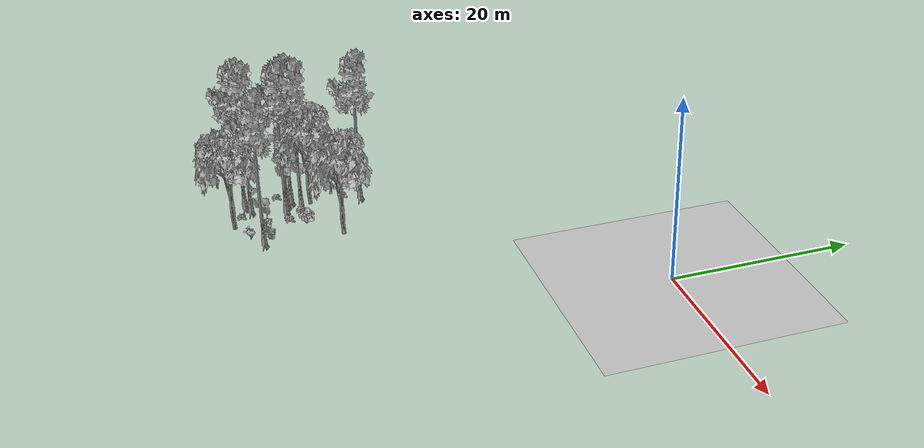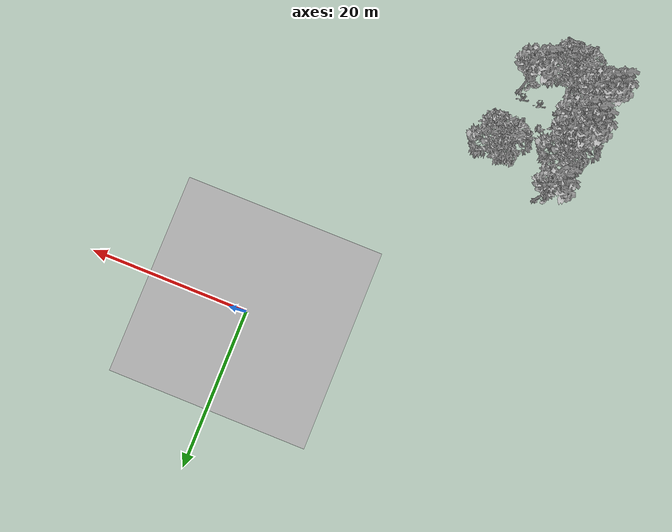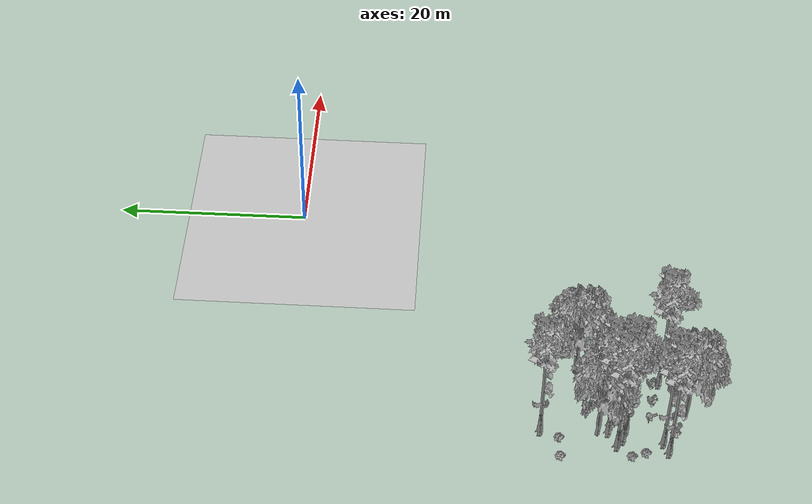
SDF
<sdf version="1.7">
 <world name="default">
  <model name="ground_plane">
   <static>1</static>
   <link name="link">
    <collision name="collision">
     <pose>-50 0 0 0 -0 0</pose>
     <geometry><plane><normal>0 0 1</normal><size>80 80</size></plane></geometry>
     <surface><contact><ode><min_depth>0.01</min_depth><max_vel>0</max_vel></ode></contact></surface>
    </collision>
    <visual name="grass">
     <cast_shadows>0</cast_shadows>
     <geometry>
      <mesh>
       <scale>0.46714285714285714 0.46714285714285714 0.1</scale>
       <uri>file://grass_plane/meshes/grass_plane.dae</uri>
      </mesh>
     </geometry>
    </visual>
   </link>
  </model>
  <model name="Tree 10">
   <static>1</static>
   <pose>-27.402453264470722 -25.61623942738576 0 1.57079 -0 0</pose>
   <link name="link">
    <collision name="collision">
     <geometry><mesh><scale>3.5 5 3.5</scale><uri>model://tree_9/meshes/tree_9.obj</uri></mesh></geometry>
    </collision>
    <visual name="visual">
     <geometry><mesh><scale>3.5 5 3.5</scale><uri>model://tree_9/meshes/tree_9.obj</uri></mesh></geometry>
    </visual>
   </link>
  </model>
  <model name="Tree 35">
   <static>1</static>
   <pose>-28.815637526900268 -33.09232623328406 0 1.57079 -0 0</pose>
   <link name="link">
    <collision name="collision">
     <geometry><mesh><scale>3.5 5 3.5</scale><uri>model://tree_9/meshes/tree_9.obj</uri></mesh></geometry>
    </collision>
    <visual name="visual">
     <geometry><mesh><scale>3.5 5 3.5</scale><uri>model://tree_9/meshes/tree_9.obj</uri></mesh></geometry>
    </visual>
   </link>
  </model>
  <model name="Tree 39">
   <static>1</static>
   <pose>-27.742781516711503 -31.20521073867753 0 1.57079 -0 0</pose>
   <link name="link">
    <collision name="collision">
     <geometry><mesh><scale>3.5 5 3.5</scale><uri>model://tree_2/meshes/tree_2.obj</uri></mesh></geometry>
    </collision>
    <visual name="visual">
     <geometry><mesh><scale>3.5 5 3.5</scale><uri>model://tree_2/meshes/tree_2.obj</uri></mesh></geometry>
    </visual>
   </link>
  </model>
  <model name="Tree 97">
   <static>1</static>
   <pose>-28.19642564750481 -37.63072425419332 0 1.57079 -0 0</pose>
   <link name="link">
    <collision name="collision">
     <geometry><mesh><scale>3.5 5 3.5</scale><uri>model://tree_9/meshes/tree_9.obj</uri></mesh></geometry>
    </collision>
    <visual name="visual">
     <geometry><mesh><scale>3.5 5 3.5</scale><uri>model://tree_9/meshes/tree_9.obj</uri></mesh></geometry>
    </visual>
   </link>
  </model>
  <model name="Tree 159">
   <static>1</static>
   <pose>-24.940498832401296 -39.908467962175635 0 1.57079 -0 0</pose>
   <link name="link">
    <collision name="collision">
     <geometry><mesh><scale>3.5 5 3.5</scale><uri>model://tree_2/meshes/tree_2.obj</uri></mesh></geometry>
    </collision>
    <visual name="visual">
     <geometry><mesh><scale>3.5 5 3.5</scale><uri>model://tree_2/meshes/tree_2.obj</uri></mesh></geometry>
    </visual>
   </link>
  </model>
  <model name="Tree 204">
   <static>1</static>
   <pose>-27.174375327964206 -32.26956782710309 0 1.57079 -0 0</pose>
   <link name="link">
    <collision name="collision">
     <geometry><mesh><scale>3.5 5 3.5</scale><uri>model://tree_9/meshes/tree_9.obj</uri></mesh></geometry>
    </collision>
    <visual name="visual">
     <geometry><mesh><scale>3.5 5 3.5</scale><uri>model://tree_9/meshes/tree_9.obj</uri></mesh></geometry>
    </visual>
   </link>
  </model>
  <model name="Tree 207">
   <static>1</static>
   <pose>-20.798110831435313 -37.43492107534723 0 1.57079 -0 0</pose>
   <link name="link">
    <collision name="collision">
     <geometry><mesh><scale>3.5 5 3.5</scale><uri>model://tree_9/meshes/tree_9.obj</uri></mesh></geometry>
    </collision>
    <visual name="visual">
     <geometry><mesh><scale>3.5 5 3.5</scale><uri>model://tree_9/meshes/tree_9.obj</uri></mesh></geometry>
    </visual>
   </link>
  </model>
  <model name="Tree 315">
   <static>1</static>
   <pose>-29.34317939191959 -38.120062006138966 0 1.57079 -0 0</pose>
   <link name="link">
    <collision name="collision">
     <geometry><mesh><scale>3.5 5 3.5</scale><uri>model://tree_9/meshes/tree_9.obj</uri></mesh></geometry>
    </collision>
    <visual name="visual">
     <geometry><mesh><scale>3.5 5 3.5</scale><uri>model://tree_9/meshes/tree_9.obj</uri></mesh></geometry>
    </visual>
   </link>
  </model>
  <model name="Tree 366">
   <static>1</static>
   <pose>-28.069709101218113 -33.67902401378935 0 1.57079 -0 0</pose>
   <link name="link">
    <collision name="collision">
     <geometry><mesh><scale>3.5 5 3.5</scale><uri>model://tree_9/meshes/tree_9.obj</uri></mesh></geometry>
    </collision>
    <visual name="visual">
     <geometry><mesh><scale>3.5 5 3.5</scale><uri>model://tree_9/meshes/tree_9.obj</uri></mesh></geometry>
    </visual>
   </link>
  </model>
  <model name="Tree 407">
   <static>1</static>
   <pose>-20.083059605896608 -29.127220858422575 0 1.57079 -0 0</pose>
   <link name="link">
    <collision name="collision">
     <geometry><mesh><scale>3.5 5 3.5</scale><uri>model://tree_2/meshes/tree_2.obj</uri></mesh></geometry>
    </collision>
    <visual name="visual">
     <geometry><mesh><scale>3.5 5 3.5</scale><uri>model://tree_2/meshes/tree_2.obj</uri></mesh></geometry>
    </visual>
   </link>
  </model>
  <model name="Tree 591">
   <static>1</static>
   <pose>-26.945943534252972 -33.99875980099323 0 1.57079 -0 0</pose>
   <link name="link">
    <collision name="collision">
     <geometry><mesh><scale>3.5 5 3.5</scale><uri>model://tree_9/meshes/tree_9.obj</uri></mesh></geometry>
    </collision>
    <visual name="visual">
     <geometry><mesh><scale>3.5 5 3.5</scale><uri>model://tree_9/meshes/tree_9.obj</uri></mesh></geometry>
    </visual>
   </link>
  </model>
  <model name="Bush 12">
   <static>1</static>
   <pose>-23.689791441578816 -36.67299985398324 0 1.57079 -0 0</pose>
   <link name="link">
    <collision name="collision">
     <geometry><mesh><scale>2 2 2</scale><uri>model://bush_4/meshes/bush_4.obj</uri></mesh></geometry>
     <surface><contact><collide_without_contact>false</collide_without_contact></contact></surface>
    </collision>
    <visual name="visual">
     <geometry><mesh><scale>2 2 2</scale><uri>model://bush_4/meshes/bush_4.obj</uri></mesh></geometry>
    </visual>
   </link>
  </model>
  <model name="Bush 22">
   <static>1</static>
   <pose>-28.279847625118517 -27.47513250943208 0 1.57079 -0 0</pose>
   <link name="link">
    <collision name="collision">
     <geometry><mesh><scale>2 2 2</scale><uri>model://bush_2/meshes/bush_2.obj</uri></mesh></geometry>
     <surface><contact><collide_without_contact>false</collide_without_contact></contact></surface>
    </collision>
    <visual name="visual">
     <geometry><mesh><scale>2 2 2</scale><uri>model://bush_2/meshes/bush_2.obj</uri></mesh></geometry>
    </visual>
   </link>
  </model>
  <model name="Bush 224">
   <static>1</static>
   <pose>-23.431114530441306 -32.45717518720195 0 1.57079 -0 0</pose>
   <link name="link">
    <collision name="collision">
     <geometry><mesh><scale>2 2 2</scale><uri>model://bush_1/meshes/bush_1.obj</uri></mesh></geometry>
     <surface><contact><collide_without_contact>false</collide_without_contact></contact></surface>
    </collision>
    <visual name="visual">
     <geometry><mesh><scale>2 2 2</scale><uri>model://bush_1/meshes/bush_1.obj</uri></mesh></geometry>
    </visual>
   </link>
  </model>
  <model name="Bush 349">
   <static>1</static>
   <pose>-30.481794935468915 -27.60870672318167 0 1.57079 -0 0</pose>
   <link name="link">
    <collision name="collision">
     <geometry><mesh><scale>2 2 2</scale><uri>model://bush_2/meshes/bush_2.obj</uri></mesh></geometry>
     <surface><contact><collide_without_contact>false</collide_without_contact></contact></surface>
    </collision>
    <visual name="visual">
     <geometry><mesh><scale>2 2 2</scale><uri>model://bush_2/meshes/bush_2.obj</uri></mesh></geometry>
    </visual>
   </link>
  </model>
  <model name="Bush 391">
   <static>1</static>
   <pose>-25.92637783808734 -36.2199517835422 0 1.57079 -0 0</pose>
   <link name="link">
    <collision name="collision">
     <geometry><mesh><scale>2 2 2</scale><uri>model://bush_5/meshes/bush_5.obj</uri></mesh></geometry>
     <surface><contact><collide_without_contact>false</collide_without_contact></contact></surface>
    </collision>
    <visual name="visual">
     <geometry><mesh><scale>2 2 2</scale><uri>model://bush_5/meshes/bush_5.obj</uri></mesh></geometry>
    </visual>
   </link>
  </model>
  <model name="Bush 476">
   <static>1</static>
   <pose>-24.784897705582434 -34.009154964719215 0 1.57079 -0 0</pose>
   <link name="link">
    <collision name="collision">
     <geometry><mesh><scale>2 2 2</scale><uri>model://bush_2/meshes/bush_2.obj</uri></mesh></geometry>
     <surface><contact><collide_without_contact>false</collide_without_contact></contact></surface>
    </collision>
    <visual name="visual">
     <geometry><mesh><scale>2 2 2</scale><uri>model://bush_2/meshes/bush_2.obj</uri></mesh></geometry>
    </visual>
   </link>
  </model>
  <model name="Bush 493">
   <static>1</static>
   <pose>-26.532747095773352 -32.53119832584466 0 1.57079 -0 0</pose>
   <link name="link">
    <collision name="collision">
     <geometry><mesh><scale>2 2 2</scale><uri>model://bush_2/meshes/bush_2.obj</uri></mesh></geometry>
     <surface><contact><collide_without_contact>false</collide_without_contact></contact></surface>
    </collision>
    <visual name="visual">
     <geometry><mesh><scale>2 2 2</scale><uri>model://bush_2/meshes/bush_2.obj</uri></mesh></geometry>
    </visual>
   </link>
  </model>
  <model name="Bush 522">
   <static>1</static>
   <pose>-21.497895370369278 -36.67218878518384 0 1.57079 -0 0</pose>
   <link name="link">
    <collision name="collision">
     <geometry><mesh><scale>2 2 2</scale><uri>model://bush_4/meshes/bush_4.obj</uri></mesh></geometry>
     <surface><contact><collide_without_contact>false</collide_without_contact></contact></surface>
    </collision>
    <visual name="visual">
     <geometry><mesh><scale>2 2 2</scale><uri>model://bush_4/meshes/bush_4.obj</uri></mesh></geometry>
    </visual>
   </link>
  </model>
  <model name="Bush 553">
   <static>1</static>
   <pose>-30.16595300569749 -34.54093008677 0 1.57079 -0 0</pose>
   <link name="link">
    <collision name="collision">
     <geometry><mesh><scale>2 2 2</scale><uri>model://bush_2/meshes/bush_2.obj</uri></mesh></geometry>
     <surface><contact><collide_without_contact>false</collide_without_contact></contact></surface>
    </collision>
    <visual name="visual">
     <geometry><mesh><scale>2 2 2</scale><uri>model://bush_2/meshes/bush_2.obj</uri></mesh></geometry>
    </visual>
   </link>
  </model>
  <model name="Bush 555">
   <static>1</static>
   <pose>-27.08699518330088 -38.86325751341034 0 1.57079 -0 0</pose>
   <link name="link">
    <collision name="collision">
     <geometry><mesh><scale>2 2 2</scale><uri>model://bush_2/meshes/bush_2.obj</uri></mesh></geometry>
     <surface><contact><collide_without_contact>false</collide_without_contact></contact></surface>
    </collision>
    <visual name="visual">
     <geometry><mesh><scale>2 2 2</scale><uri>model://bush_2/meshes/bush_2.obj</uri></mesh></geometry>
    </visual>
   </link>
  </model>
  <model name="Bush 580">
   <static>1</static>
   <pose>-22.057044524086304 -38.63007557226176 0 1.57079 -0 0</pose>
   <link name="link">
    <collision name="collision">
     <geometry><mesh><scale>2 2 2</scale><uri>model://bush_0/meshes/bush_0.obj</uri></mesh></geometry>
     <surface><contact><collide_without_contact>false</collide_without_contact></contact></surface>
    </collision>
    <visual name="visual">
     <geometry><mesh><scale>2 2 2</scale><uri>model://bush_0/meshes/bush_0.obj</uri></mesh></geometry>
    </visual>
   </link>
  </model>
  <model name="Bush 613">
   <static>1</static>
   <pose>-29.675956480153708 -35.903871476942854 0 1.57079 -0 0</pose>
   <link name="link">
    <collision name="collision">
     <geometry><mesh><scale>2 2 2</scale><uri>model://bush_2/meshes/bush_2.obj</uri></mesh></geometry>
     <surface><contact><collide_without_contact>false</collide_without_contact></contact></surface>
    </collision>
    <visual name="visual">
     <geometry><mesh><scale>2 2 2</scale><uri>model://bush_2/meshes/bush_2.obj</uri></mesh></geometry>
    </visual>
   </link>
  </model>
 </world>
</sdf>
